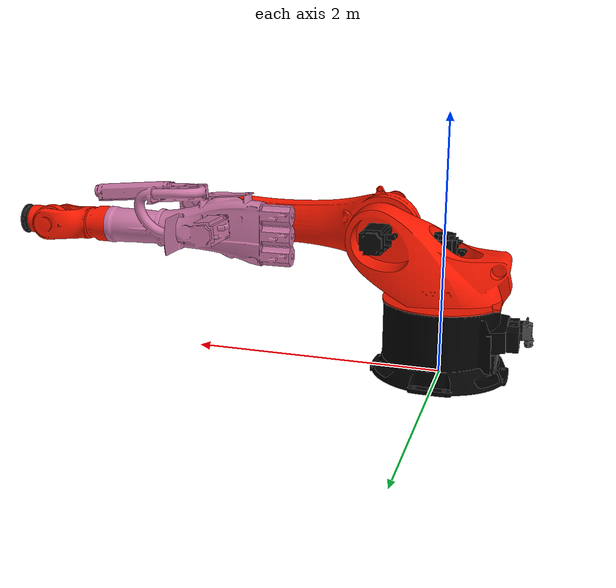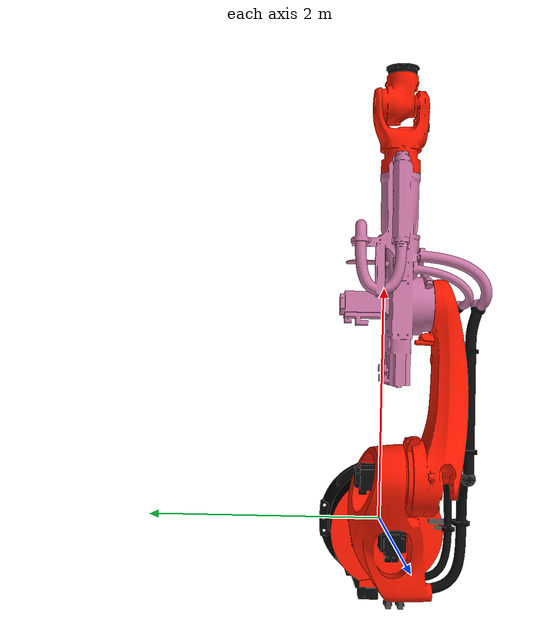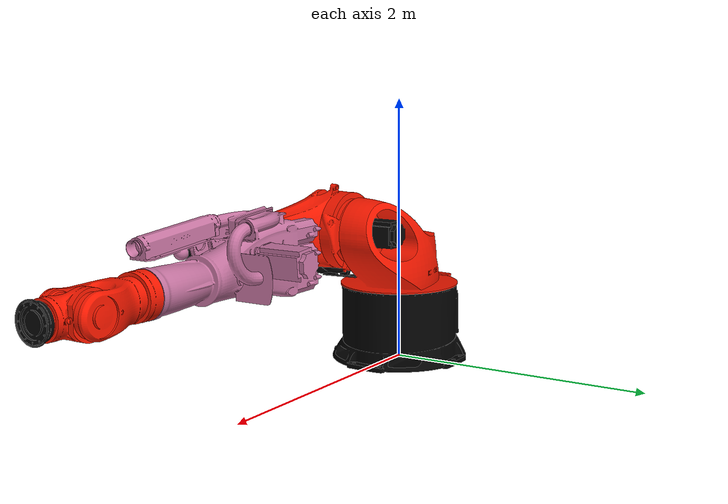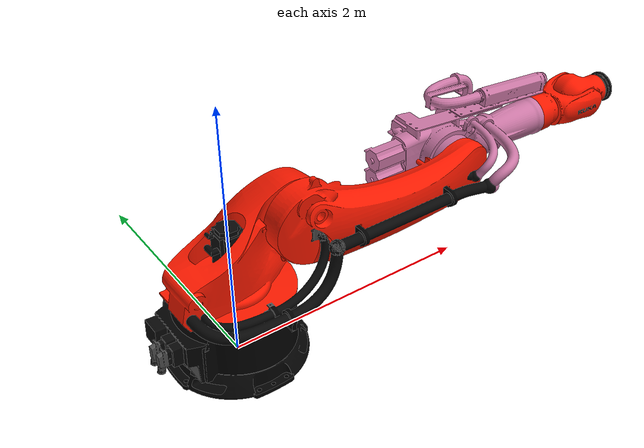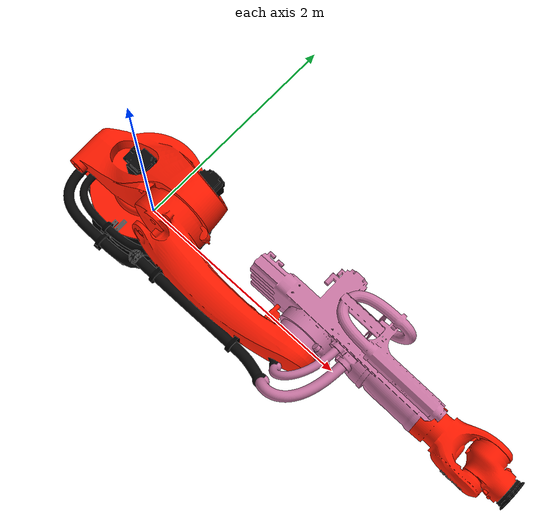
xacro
<?xml version="1.0"?>
<robot xmlns:xacro="http://www.ros.org/wiki/xacro" name="kr240_r3330">
  <!-- Import macro files  -->
  <xacro:include filename="$(find kuka_fortec_support)/urdf/kr240_r3330_macro.xacro"/>
  <xacro:include filename="$(find kuka_fortec_support)/urdf/kr_fortec_ros2_control_macro.xacro"/>
  <!-- Read additional arguments  -->
  <xacro:arg name="driver_version" default="rsi_only"/>
  <xacro:arg name="mode" default="hardware"/>
  <xacro:arg name="gpio_config" default=""/>
  <xacro:arg name="roundtrip_time" default="0"/>
  <xacro:arg name="client_ip" default="0.0.0.0"/>
  <xacro:arg name="client_port" default="59152"/>
  <xacro:arg name="mxa_client_port" default="1337"/>
  <xacro:arg name="controller_ip" default="0.0.0.0"/>
  <xacro:arg name="verify_robot_model" default="true"/>
  <xacro:arg name="prefix" default=""/>
  <xacro:arg name="x" default="0"/>
  <xacro:arg name="y" default="0"/>
  <xacro:arg name="z" default="0"/>
  <xacro:arg name="roll" default="0"/>
  <xacro:arg name="pitch" default="0"/>
  <xacro:arg name="yaw" default="0"/>
  <xacro:arg name="rsi_xml_config_file" default=""/>
  <xacro:kuka_fortec_ros2_control name="$(arg prefix)kr240_r3330" driver_version="$(arg driver_version)" client_ip="$(arg client_ip)" client_port="$(arg client_port)" mxa_client_port="$(arg mxa_client_port)" controller_ip="$(arg controller_ip)" prefix="$(arg prefix)" mode="$(arg mode)" gpio_config="$(arg gpio_config)" roundtrip_time="$(arg roundtrip_time)" verify_robot_model="$(arg verify_robot_model)" rsi_xml_config_file="$(arg rsi_xml_config_file)">
    <ext_axes_ros2_control_joints/>
  </xacro:kuka_fortec_ros2_control>
  <!-- world link -->
  <link name="world"/>
  <!-- robot links, joints -->
  <xacro:kuka_kr240_r3330_robot prefix="$(arg prefix)" package_name="kuka_fortec_support"/>
  <!-- default world - base_link joint -->
  <joint name="$(arg prefix)world-base_link" type="fixed">
    <parent link="world"/>
    <child link="$(arg prefix)base_link"/>
    <origin xyz="$(arg x) $(arg y) $(arg z)" rpy="$(arg roll) $(arg pitch) $(arg yaw)"/>
  </joint>
</robot>

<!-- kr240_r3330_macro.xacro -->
<robot xmlns:xacro="http://www.ros.org/wiki/xacro" name="kr240_r3330">
  <xacro:macro name="kuka_kr240_r3330_robot" params="prefix package_name">
    <link name="${prefix}base"/>
    <link name="${prefix}base_link">
      <collision>
        <geometry>
          <mesh filename="package://${package_name}/meshes/kr240_r3330/collision/base_link.stl"/>
        </geometry>
        <origin rpy="0.0 -0.0 0.0" xyz="0.0 0.0 0.0"/>
      </collision>
      <inertial>
        <inertia ixx="0.0" ixy="0.0" ixz="0.0" iyy="0.0" iyz="0.0" izz="0.0"/>
        <mass value="4.461E2"/>
        <origin rpy="0.0 -0.0 0.0" xyz="0.0 0.0 0.0"/>
      </inertial>
      <visual>
        <geometry>
          <mesh filename="package://${package_name}/meshes/kr240_r3330/visual/base_link.dae"/>
        </geometry>
        <origin rpy="0.0 -0.0 0.0" xyz="0.0 0.0 0.0"/>
      </visual>
    </link>
    <link name="${prefix}flange"/>
    <link name="${prefix}link_1">
      <collision>
        <geometry>
          <mesh filename="package://${package_name}/meshes/kr240_r3330/collision/link_1.stl"/>
        </geometry>
        <origin rpy="-3.141592653589793 0.0 -0.0" xyz="0.0 -4.898587196589413e-17 0.4"/>
      </collision>
      <inertial>
        <inertia ixx="0.0" ixy="0.0" ixz="0.0" iyy="6.87109208044536E-31" iyz="0.0" izz="108.5602"/>
        <mass value="8.506E2"/>
        <origin rpy="0.0 -0.0 0.0" xyz="0.1452291 0.0490361 -0.4425695"/>
      </inertial>
      <visual>
        <geometry>
          <mesh filename="package://${package_name}/meshes/kr240_r3330/visual/link_1.dae"/>
        </geometry>
        <origin rpy="-3.141592653589793 0.0 -0.0" xyz="0.0 -4.898587196589413e-17 0.4"/>
      </visual>
    </link>
    <link name="${prefix}link_2">
      <collision>
        <geometry>
          <mesh filename="package://${package_name}/meshes/kr240_r3330/collision/link_2.stl"/>
        </geometry>
        <origin rpy="1.5707963267948968 -0.0 1.5707963267948966" xyz="-1.045 -0.49999999999999994 1.1297366722134329e-16"/>
      </collision>
      <inertial>
        <inertia ixx="14.5413" ixy="0.0" ixz="0.0" iyy="147.936" iyz="0.0" izz="151.0383"/>
        <mass value="4.476E2"/>
        <origin rpy="0.0 -0.0 0.0" xyz="0.48573200000000005 0.0 -0.0583625"/>
      </inertial>
      <visual>
        <geometry>
          <mesh filename="package://${package_name}/meshes/kr240_r3330/visual/link_2.dae"/>
        </geometry>
        <origin rpy="1.5707963267948968 -0.0 1.5707963267948966" xyz="-1.045 -0.49999999999999994 1.1297366722134329e-16"/>
      </visual>
    </link>
    <link name="${prefix}link_3">
      <collision>
        <geometry>
          <mesh filename="package://${package_name}/meshes/kr240_r3330/collision/link_3.stl"/>
        </geometry>
        <origin rpy="1.5707963267948968 -0.0 -0.0" xyz="-0.5000000000000001 2.345 1.1297366722134334e-16"/>
      </collision>
      <inertial>
        <inertia ixx="73.3853" ixy="0.0" ixz="0.0" iyy="10.2549" iyz="0.0" izz="73.4141"/>
        <mass value="3.327E2"/>
        <origin rpy="0.0 -1.5707963267948966 -1.5707963267948968" xyz="0.1065316 0.055 0.1904903"/>
      </inertial>
      <visual>
        <geometry>
          <mesh filename="package://${package_name}/meshes/kr240_r3330/visual/link_3.dae"/>
        </geometry>
        <origin rpy="1.5707963267948968 -0.0 -0.0" xyz="-0.5000000000000001 2.345 1.1297366722134334e-16"/>
      </visual>
    </link>
    <link name="${prefix}link_4">
      <collision>
        <geometry>
          <mesh filename="package://${package_name}/meshes/kr240_r3330/collision/link_4.stl"/>
        </geometry>
        <origin rpy="1.8369701987210297e-16 1.5707963267948966 0.0" xyz="-2.29 1.7206287528020274e-17 1.5639999999999998"/>
      </collision>
      <inertial>
        <inertia ixx="6.7864" ixy="0.0" ixz="0.0" iyy="3.1925" iyz="0.0" izz="8.5645"/>
        <mass value="1.717E2"/>
        <origin rpy="1.5707963267948966 -0.0 1.5707963267948966" xyz="0.0 0.0 -0.3312509"/>
      </inertial>
      <visual>
        <geometry>
          <mesh filename="package://${package_name}/meshes/kr240_r3330/visual/link_4.dae"/>
        </geometry>
        <origin rpy="1.8369701987210297e-16 1.5707963267948966 0.0" xyz="-2.29 1.7206287528020274e-17 1.5639999999999998"/>
      </visual>
    </link>
    <link name="${prefix}link_5">
      <collision>
        <geometry>
          <mesh filename="package://${package_name}/meshes/kr240_r3330/collision/link_5.stl"/>
        </geometry>
        <origin rpy="1.5707963267948968 -3.749399456654644e-33 -6.123233995736766e-17" xyz="-2.0250000000000004 2.29 9.79717439317831e-19"/>
      </collision>
      <inertial>
        <inertia ixx="0.0" ixy="0.0" ixz="0.0" iyy="0.0" iyz="0.0" izz="0.0"/>
        <mass value="1.0E-6"/>
        <origin rpy="0.0 -0.0 0.0" xyz="0.0 0.0 0.0"/>
      </inertial>
      <visual>
        <geometry>
          <mesh filename="package://${package_name}/meshes/kr240_r3330/visual/link_5.dae"/>
        </geometry>
        <origin rpy="1.5707963267948968 -3.749399456654644e-33 -6.123233995736766e-17" xyz="-2.0250000000000004 2.29 9.79717439317831e-19"/>
      </visual>
    </link>
    <link name="${prefix}link_6">
      <collision>
        <geometry>
          <mesh filename="package://${package_name}/meshes/kr240_r3330/collision/link_6.stl"/>
        </geometry>
        <origin rpy="1.2246467991473532e-16 1.5707963267948966 0.0" xyz="-2.2900000000000005 -1.4077314956198825e-16 2.3149999999999995"/>
      </collision>
      <inertial>
        <inertia ixx="0.0" ixy="0.0" ixz="0.0" iyy="0.0" iyz="0.0" izz="0.0"/>
        <mass value="1.0E-6"/>
        <origin rpy="0.0 -0.0 0.0" xyz="0.0 0.0 0.0"/>
      </inertial>
      <visual>
        <geometry>
          <mesh filename="package://${package_name}/meshes/kr240_r3330/visual/link_6.dae"/>
        </geometry>
        <origin rpy="1.2246467991473532e-16 1.5707963267948966 0.0" xyz="-2.2900000000000005 -1.4077314956198825e-16 2.3149999999999995"/>
      </visual>
    </link>
    <link name="${prefix}tool0"/>
    <joint name="${prefix}base_link-base" type="fixed">
      <child link="${prefix}base"/>
      <parent link="${prefix}base_link"/>
    </joint>
    <joint name="${prefix}joint_1" type="revolute">
      <axis xyz="0.0 0.0 1.0"/>
      <child link="${prefix}link_1"/>
      <limit effort="1.44E4" lower="-3.2288591125E0" upper="3.2288591125E0" velocity="1.7456E0"/>
      <origin rpy="3.141592653589793 -0.0 0.0" xyz="0.0 0.0 0.4"/>
      <parent link="${prefix}base_link"/>
    </joint>
    <joint name="${prefix}joint_2" type="revolute">
      <axis xyz="0.0 0.0 1.0"/>
      <child link="${prefix}link_2"/>
      <limit effort="1.44E4" lower="-2.268928025E0" upper="3.4906585E-1" velocity="1.5713E0"/>
      <origin rpy="1.5707963267948966 -0.0 0.0" xyz="0.5 0.0 -0.645"/>
      <parent link="${prefix}link_1"/>
    </joint>
    <joint name="${prefix}joint_3" type="revolute">
      <axis xyz="0.0 0.0 1.0"/>
      <child link="${prefix}link_3"/>
      <limit effort="1.28158064E4" lower="-1.74532925E0" upper="2.51327412E0" velocity="1.5711E0"/>
      <origin rpy="0.0 -0.0 0.0" xyz="1.3 0.0 0.0"/>
      <parent link="${prefix}link_2"/>
    </joint>
    <joint name="${prefix}joint_4" type="revolute">
      <axis xyz="0.0 0.0 1.0"/>
      <child link="${prefix}link_4"/>
      <limit effort="4.0569749E3" lower="-6.108652375E0" upper="6.108652375E0" velocity="2.0947E0"/>
      <origin rpy="1.5707963267948966 -0.0 -1.5707963267948966" xyz="1.064 0.055 0.0"/>
      <parent link="${prefix}link_3"/>
    </joint>
    <joint name="${prefix}joint_5" type="revolute">
      <axis xyz="0.0 0.0 1.0"/>
      <child link="${prefix}link_5"/>
      <limit effort="4.0569749E3" lower="-2.0943951E0" upper="2.0943951E0" velocity="2.0938E0"/>
      <origin rpy="0.0 1.5707963267948966 1.5707963267948966" xyz="0.0 0.0 -0.461"/>
      <parent link="${prefix}link_4"/>
    </joint>
    <joint name="${prefix}joint_6" type="revolute">
      <axis xyz="0.0 0.0 1.0"/>
      <child link="${prefix}link_6"/>
      <limit effort="2.235192E3" lower="-6.108652375E0" upper="6.108652375E0" velocity="2.7844E0"/>
      <origin rpy="1.5707963267948966 -0.0 -1.5707963267948966" xyz="0.29 0.0 0.0"/>
      <parent link="${prefix}link_5"/>
    </joint>
    <joint name="${prefix}link6-flange" type="fixed">
      <child link="${prefix}flange"/>
      <origin rpy="0.0 1.5707963267948966 0.0" xyz="0.0 0.0 0.0"/>
      <parent link="${prefix}link_6"/>
    </joint>
    <joint name="${prefix}link6-tool0" type="fixed">
      <child link="${prefix}tool0"/>
      <origin rpy="3.141592653589793 1.2246467991473532E-16 3.141592653589793" xyz="0.0 0.0 0.0"/>
      <parent link="${prefix}link_6"/>
    </joint>
  </xacro:macro>
</robot>
